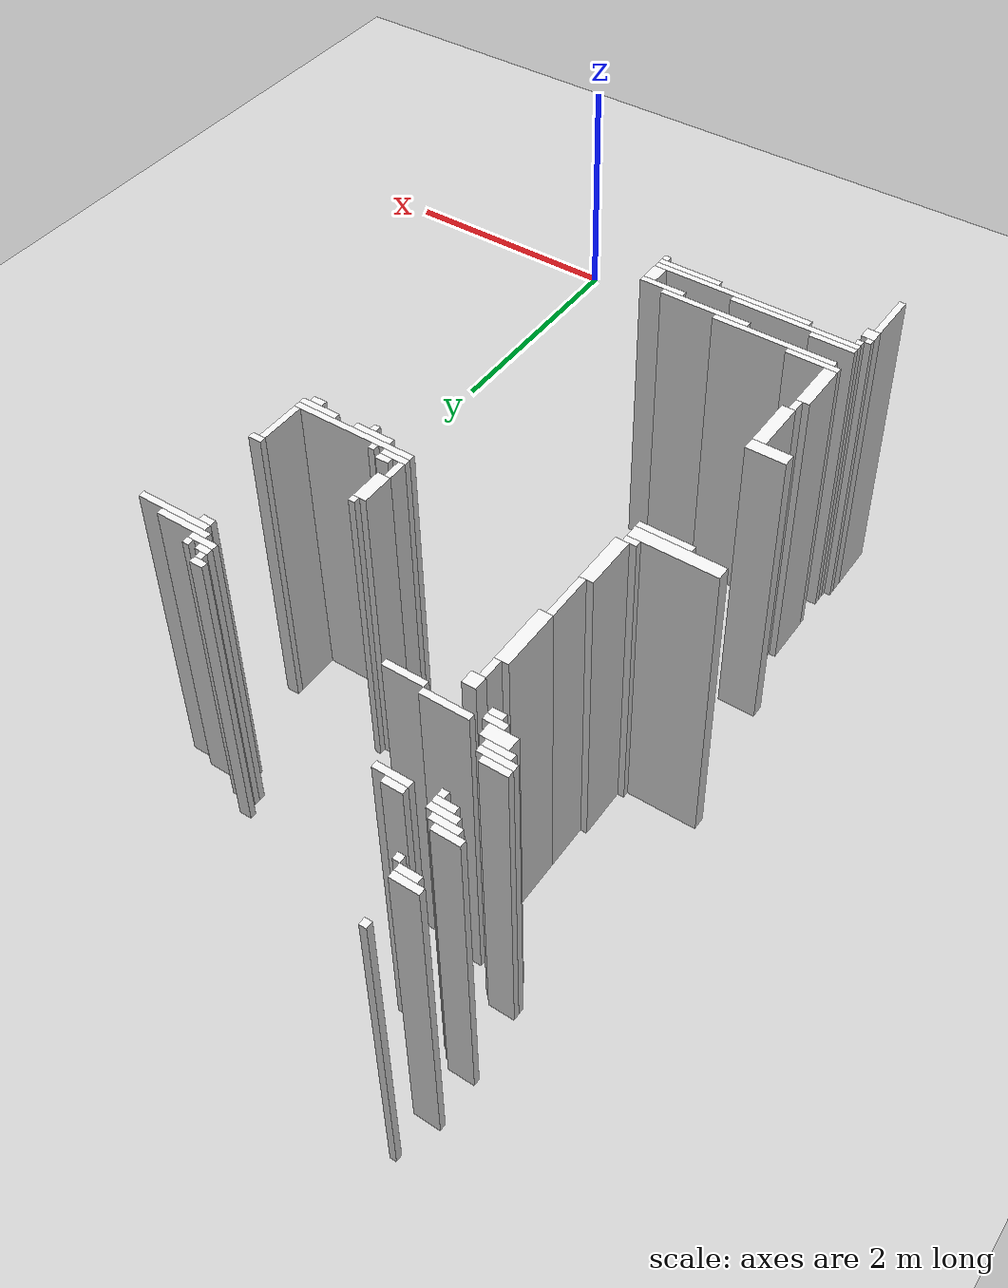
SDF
<sdf version="1.7">
 <world name="occupancy_map_world">
  <model name="ground_plane">
   <static>true</static>
   <link name="link">
    <collision name="collision">
     <geometry><plane><normal>0 0 1</normal><size>25.380000000000003 18.84</size></plane></geometry>
    </collision>
    <visual name="visual">
     <geometry><plane><normal>0 0 1</normal><size>25.380000000000003 18.84</size></plane></geometry>
     <material>
      <script><uri>file://media/materials/scripts/gazebo.material</uri><name>Gazebo/Grey</name></script>
     </material>
    </visual>
   </link>
  </model>
  <model name="wall_37">
   <static>true</static>
   <pose>-3.729000000000001 7.953 1.25 0 0 0.0</pose>
   <link name="link">
    <collision name="collision"><geometry><box><size>0.05 0.05 2.5</size></box></geometry></collision>
    <visual name="visual">
     <geometry><box><size>0.05 0.05 2.5</size></box></geometry>
     <material>
      <script><uri>file://media/materials/scripts/gazebo.material</uri><name>Gazebo/White</name></script>
     </material>
    </visual>
   </link>
  </model>
  <model name="wall_38">
   <static>true</static>
   <pose>-3.729000000000001 2.4029999999999996 1.25 0 0 0.0</pose>
   <link name="link">
    <collision name="collision"><geometry><box><size>0.05 0.05 2.5</size></box></geometry></collision>
    <visual name="visual">
     <geometry><box><size>0.05 0.05 2.5</size></box></geometry>
     <material>
      <script><uri>file://media/materials/scripts/gazebo.material</uri><name>Gazebo/White</name></script>
     </material>
    </visual>
   </link>
  </model>
  <model name="wall_39">
   <static>true</static>
   <pose>-3.729000000000001 2.0780000000000003 1.25 0 0 0.0</pose>
   <link name="link">
    <collision name="collision"><geometry><box><size>0.05 0.4 2.5</size></box></geometry></collision>
    <visual name="visual">
     <geometry><box><size>0.05 0.4 2.5</size></box></geometry>
     <material>
      <script><uri>file://media/materials/scripts/gazebo.material</uri><name>Gazebo/White</name></script>
     </material>
    </visual>
   </link>
  </model>
  <model name="wall_50">
   <static>true</static>
   <pose>-3.7540000000000013 7.653 1.25 0 0 0.0</pose>
   <link name="link">
    <collision name="collision"><geometry><box><size>0.2 0.05 2.5</size></box></geometry></collision>
    <visual name="visual">
     <geometry><box><size>0.2 0.05 2.5</size></box></geometry>
     <material>
      <script><uri>file://media/materials/scripts/gazebo.material</uri><name>Gazebo/White</name></script>
     </material>
    </visual>
   </link>
  </model>
  <model name="wall_51">
   <static>true</static>
   <pose>-3.7540000000000013 7.303 1.25 0 0 0.0</pose>
   <link name="link">
    <collision name="collision"><geometry><box><size>0.2 0.05 2.5</size></box></geometry></collision>
    <visual name="visual">
     <geometry><box><size>0.2 0.05 2.5</size></box></geometry>
     <material>
      <script><uri>file://media/materials/scripts/gazebo.material</uri><name>Gazebo/White</name></script>
     </material>
    </visual>
   </link>
  </model>
  <model name="wall_56">
   <static>true</static>
   <pose>-3.729000000000001 7.603000000000001 1.25 0 0 0.0</pose>
   <link name="link">
    <collision name="collision">
     <geometry><box><size>0.15000000000000002 0.05 2.5</size></box></geometry>
    </collision>
    <visual name="visual">
     <geometry><box><size>0.15000000000000002 0.05 2.5</size></box></geometry>
     <material>
      <script><uri>file://media/materials/scripts/gazebo.material</uri><name>Gazebo/White</name></script>
     </material>
    </visual>
   </link>
  </model>
  <model name="wall_58">
   <static>true</static>
   <pose>-3.6290000000000013 7.553 1.25 0 0 0.0</pose>
   <link name="link">
    <collision name="collision"><geometry><box><size>0.05 0.05 2.5</size></box></geometry></collision>
    <visual name="visual">
     <geometry><box><size>0.05 0.05 2.5</size></box></geometry>
     <material>
      <script><uri>file://media/materials/scripts/gazebo.material</uri><name>Gazebo/White</name></script>
     </material>
    </visual>
   </link>
  </model>
  <model name="wall_59">
   <static>true</static>
   <pose>-3.6290000000000013 3.2779999999999996 1.25 0 0 0.0</pose>
   <link name="link">
    <collision name="collision"><geometry><box><size>0.05 0.1 2.5</size></box></geometry></collision>
    <visual name="visual">
     <geometry><box><size>0.05 0.1 2.5</size></box></geometry>
     <material>
      <script><uri>file://media/materials/scripts/gazebo.material</uri><name>Gazebo/White</name></script>
     </material>
    </visual>
   </link>
  </model>
  <model name="wall_61">
   <static>true</static>
   <pose>-3.7040000000000006 7.253000000000001 1.25 0 0 0.0</pose>
   <link name="link">
    <collision name="collision"><geometry><box><size>0.2 0.05 2.5</size></box></geometry></collision>
    <visual name="visual">
     <geometry><box><size>0.2 0.05 2.5</size></box></geometry>
     <material>
      <script><uri>file://media/materials/scripts/gazebo.material</uri><name>Gazebo/White</name></script>
     </material>
    </visual>
   </link>
  </model>
  <model name="wall_62">
   <static>true</static>
   <pose>-3.7040000000000006 6.803 1.25 0 0 0.0</pose>
   <link name="link">
    <collision name="collision"><geometry><box><size>0.2 0.05 2.5</size></box></geometry></collision>
    <visual name="visual">
     <geometry><box><size>0.2 0.05 2.5</size></box></geometry>
     <material>
      <script><uri>file://media/materials/scripts/gazebo.material</uri><name>Gazebo/White</name></script>
     </material>
    </visual>
   </link>
  </model>
  <model name="wall_63">
   <static>true</static>
   <pose>-3.654 7.203 1.25 0 0 0.0</pose>
   <link name="link">
    <collision name="collision"><geometry><box><size>0.2 0.05 2.5</size></box></geometry></collision>
    <visual name="visual">
     <geometry><box><size>0.2 0.05 2.5</size></box></geometry>
     <material>
      <script><uri>file://media/materials/scripts/gazebo.material</uri><name>Gazebo/White</name></script>
     </material>
    </visual>
   </link>
  </model>
  <model name="wall_64">
   <static>true</static>
   <pose>-3.654 6.703 1.25 0 0 0.0</pose>
   <link name="link">
    <collision name="collision"><geometry><box><size>0.2 0.05 2.5</size></box></geometry></collision>
    <visual name="visual">
     <geometry><box><size>0.2 0.05 2.5</size></box></geometry>
     <material>
      <script><uri>file://media/materials/scripts/gazebo.material</uri><name>Gazebo/White</name></script>
     </material>
    </visual>
   </link>
  </model>
  <model name="wall_65">
   <static>true</static>
   <pose>-3.3290000000000006 7.203 1.25 0 0 0.0</pose>
   <link name="link">
    <collision name="collision">
     <geometry><box><size>0.15000000000000002 0.05 2.5</size></box></geometry>
    </collision>
    <visual name="visual">
     <geometry><box><size>0.15000000000000002 0.05 2.5</size></box></geometry>
     <material>
      <script><uri>file://media/materials/scripts/gazebo.material</uri><name>Gazebo/White</name></script>
     </material>
    </visual>
   </link>
  </model>
  <model name="wall_66">
   <static>true</static>
   <pose>-3.6290000000000013 7.153 1.25 0 0 0.0</pose>
   <link name="link">
    <collision name="collision">
     <geometry><box><size>0.15000000000000002 0.05 2.5</size></box></geometry>
    </collision>
    <visual name="visual">
     <geometry><box><size>0.15000000000000002 0.05 2.5</size></box></geometry>
     <material>
      <script><uri>file://media/materials/scripts/gazebo.material</uri><name>Gazebo/White</name></script>
     </material>
    </visual>
   </link>
  </model>
  <model name="wall_67">
   <static>true</static>
   <pose>-3.279 7.153 1.25 0 0 0.0</pose>
   <link name="link">
    <collision name="collision"><geometry><box><size>0.25 0.05 2.5</size></box></geometry></collision>
    <visual name="visual">
     <geometry><box><size>0.25 0.05 2.5</size></box></geometry>
     <material>
      <script><uri>file://media/materials/scripts/gazebo.material</uri><name>Gazebo/White</name></script>
     </material>
    </visual>
   </link>
  </model>
  <model name="wall_69">
   <static>true</static>
   <pose>-3.5790000000000006 7.103000000000001 1.25 0 0 0.0</pose>
   <link name="link">
    <collision name="collision"><geometry><box><size>0.05 0.05 2.5</size></box></geometry></collision>
    <visual name="visual">
     <geometry><box><size>0.05 0.05 2.5</size></box></geometry>
     <material>
      <script><uri>file://media/materials/scripts/gazebo.material</uri><name>Gazebo/White</name></script>
     </material>
    </visual>
   </link>
  </model>
  <model name="wall_103">
   <static>true</static>
   <pose>-3.6790000000000003 6.753000000000001 1.25 0 0 0.0</pose>
   <link name="link">
    <collision name="collision"><geometry><box><size>0.25 0.05 2.5</size></box></geometry></collision>
    <visual name="visual">
     <geometry><box><size>0.25 0.05 2.5</size></box></geometry>
     <material>
      <script><uri>file://media/materials/scripts/gazebo.material</uri><name>Gazebo/White</name></script>
     </material>
    </visual>
   </link>
  </model>
  <model name="wall_107">
   <static>true</static>
   <pose>-3.604000000000001 6.628000000000001 1.25 0 0 0.0</pose>
   <link name="link">
    <collision name="collision"><geometry><box><size>0.2 0.1 2.5</size></box></geometry></collision>
    <visual name="visual">
     <geometry><box><size>0.2 0.1 2.5</size></box></geometry>
     <material>
      <script><uri>file://media/materials/scripts/gazebo.material</uri><name>Gazebo/White</name></script>
     </material>
    </visual>
   </link>
  </model>
  <model name="wall_108">
   <static>true</static>
   <pose>-3.229000000000001 6.603000000000001 1.25 0 0 0.0</pose>
   <link name="link">
    <collision name="collision">
     <geometry><box><size>0.35000000000000003 0.05 2.5</size></box></geometry>
    </collision>
    <visual name="visual">
     <geometry><box><size>0.35000000000000003 0.05 2.5</size></box></geometry>
     <material>
      <script><uri>file://media/materials/scripts/gazebo.material</uri><name>Gazebo/White</name></script>
     </material>
    </visual>
   </link>
  </model>
  <model name="wall_109">
   <static>true</static>
   <pose>-3.529 6.553 1.25 0 0 0.0</pose>
   <link name="link">
    <collision name="collision">
     <geometry><box><size>0.15000000000000002 0.05 2.5</size></box></geometry>
    </collision>
    <visual name="visual">
     <geometry><box><size>0.15000000000000002 0.05 2.5</size></box></geometry>
     <material>
      <script><uri>file://media/materials/scripts/gazebo.material</uri><name>Gazebo/White</name></script>
     </material>
    </visual>
   </link>
  </model>
  <model name="wall_110">
   <static>true</static>
   <pose>-2.904 6.553 1.25 0 0 0.0</pose>
   <link name="link">
    <collision name="collision">
     <geometry><box><size>0.30000000000000004 0.05 2.5</size></box></geometry>
    </collision>
    <visual name="visual">
     <geometry><box><size>0.30000000000000004 0.05 2.5</size></box></geometry>
     <material>
      <script><uri>file://media/materials/scripts/gazebo.material</uri><name>Gazebo/White</name></script>
     </material>
    </visual>
   </link>
  </model>
  <model name="wall_111">
   <static>true</static>
   <pose>-1.3539999999999992 6.553 1.25 0 0 0.0</pose>
   <link name="link">
    <collision name="collision"><geometry><box><size>0.1 0.05 2.5</size></box></geometry></collision>
    <visual name="visual">
     <geometry><box><size>0.1 0.05 2.5</size></box></geometry>
     <material>
      <script><uri>file://media/materials/scripts/gazebo.material</uri><name>Gazebo/White</name></script>
     </material>
    </visual>
   </link>
  </model>
  <model name="wall_115">
   <static>true</static>
   <pose>-3.5040000000000013 6.503000000000001 1.25 0 0 0.0</pose>
   <link name="link">
    <collision name="collision"><geometry><box><size>0.1 0.05 2.5</size></box></geometry></collision>
    <visual name="visual">
     <geometry><box><size>0.1 0.05 2.5</size></box></geometry>
     <material>
      <script><uri>file://media/materials/scripts/gazebo.material</uri><name>Gazebo/White</name></script>
     </material>
    </visual>
   </link>
  </model>
  <model name="wall_116">
   <static>true</static>
   <pose>-1.3290000000000006 6.503000000000001 1.25 0 0 0.0</pose>
   <link name="link">
    <collision name="collision"><geometry><box><size>0.05 0.05 2.5</size></box></geometry></collision>
    <visual name="visual">
     <geometry><box><size>0.05 0.05 2.5</size></box></geometry>
     <material>
      <script><uri>file://media/materials/scripts/gazebo.material</uri><name>Gazebo/White</name></script>
     </material>
    </visual>
   </link>
  </model>
  <model name="wall_117">
   <static>true</static>
   <pose>-1.304000000000002 6.453 1.25 0 0 0.0</pose>
   <link name="link">
    <collision name="collision"><geometry><box><size>0.1 0.05 2.5</size></box></geometry></collision>
    <visual name="visual">
     <geometry><box><size>0.1 0.05 2.5</size></box></geometry>
     <material>
      <script><uri>file://media/materials/scripts/gazebo.material</uri><name>Gazebo/White</name></script>
     </material>
    </visual>
   </link>
  </model>
  <model name="wall_118">
   <static>true</static>
   <pose>-1.179000000000002 6.453 1.25 0 0 0.0</pose>
   <link name="link">
    <collision name="collision"><geometry><box><size>0.05 0.05 2.5</size></box></geometry></collision>
    <visual name="visual">
     <geometry><box><size>0.05 0.05 2.5</size></box></geometry>
     <material>
      <script><uri>file://media/materials/scripts/gazebo.material</uri><name>Gazebo/White</name></script>
     </material>
    </visual>
   </link>
  </model>
  <model name="wall_119">
   <static>true</static>
   <pose>-3.2540000000000013 6.378000000000001 1.25 0 0 0.0</pose>
   <link name="link">
    <collision name="collision"><geometry><box><size>0.1 0.1 2.5</size></box></geometry></collision>
    <visual name="visual">
     <geometry><box><size>0.1 0.1 2.5</size></box></geometry>
     <material>
      <script><uri>file://media/materials/scripts/gazebo.material</uri><name>Gazebo/White</name></script>
     </material>
    </visual>
   </link>
  </model>
  <model name="wall_120">
   <static>true</static>
   <pose>-1.2540000000000013 6.403 1.25 0 0 0.0</pose>
   <link name="link">
    <collision name="collision"><geometry><box><size>0.2 0.05 2.5</size></box></geometry></collision>
    <visual name="visual">
     <geometry><box><size>0.2 0.05 2.5</size></box></geometry>
     <material>
      <script><uri>file://media/materials/scripts/gazebo.material</uri><name>Gazebo/White</name></script>
     </material>
    </visual>
   </link>
  </model>
  <model name="wall_121">
   <static>true</static>
   <pose>-1.054000000000002 6.353000000000001 1.25 0 0 0.0</pose>
   <link name="link">
    <collision name="collision"><geometry><box><size>0.4 0.05 2.5</size></box></geometry></collision>
    <visual name="visual">
     <geometry><box><size>0.4 0.05 2.5</size></box></geometry>
     <material>
      <script><uri>file://media/materials/scripts/gazebo.material</uri><name>Gazebo/White</name></script>
     </material>
    </visual>
   </link>
  </model>
  <model name="wall_124">
   <static>true</static>
   <pose>-3.279 6.253000000000001 1.25 0 0 0.0</pose>
   <link name="link">
    <collision name="collision">
     <geometry><box><size>0.05 0.15000000000000002 2.5</size></box></geometry>
    </collision>
    <visual name="visual">
     <geometry><box><size>0.05 0.15000000000000002 2.5</size></box></geometry>
     <material>
      <script><uri>file://media/materials/scripts/gazebo.material</uri><name>Gazebo/White</name></script>
     </material>
    </visual>
   </link>
  </model>
  <model name="wall_125">
   <static>true</static>
   <pose>-0.929000000000002 6.303 1.25 0 0 0.0</pose>
   <link name="link">
    <collision name="collision"><geometry><box><size>0.55 0.05 2.5</size></box></geometry></collision>
    <visual name="visual">
     <geometry><box><size>0.55 0.05 2.5</size></box></geometry>
     <material>
      <script><uri>file://media/materials/scripts/gazebo.material</uri><name>Gazebo/White</name></script>
     </material>
    </visual>
   </link>
  </model>
  <model name="wall_126">
   <static>true</static>
   <pose>-1.154 6.253000000000001 1.25 0 0 0.0</pose>
   <link name="link">
    <collision name="collision"><geometry><box><size>0.1 0.05 2.5</size></box></geometry></collision>
    <visual name="visual">
     <geometry><box><size>0.1 0.05 2.5</size></box></geometry>
     <material>
      <script><uri>file://media/materials/scripts/gazebo.material</uri><name>Gazebo/White</name></script>
     </material>
    </visual>
   </link>
  </model>
  <model name="wall_130">
   <static>true</static>
   <pose>-3.3040000000000003 5.953 1.25 0 0 0.0</pose>
   <link name="link">
    <collision name="collision"><geometry><box><size>0.1 0.45 2.5</size></box></geometry></collision>
    <visual name="visual">
     <geometry><box><size>0.1 0.45 2.5</size></box></geometry>
     <material>
      <script><uri>file://media/materials/scripts/gazebo.material</uri><name>Gazebo/White</name></script>
     </material>
    </visual>
   </link>
  </model>
  <model name="wall_146">
   <static>true</static>
   <pose>-3.3290000000000006 5.553 1.25 0 0 0.0</pose>
   <link name="link">
    <collision name="collision">
     <geometry><box><size>0.05 0.35000000000000003 2.5</size></box></geometry>
    </collision>
    <visual name="visual">
     <geometry><box><size>0.05 0.35000000000000003 2.5</size></box></geometry>
     <material>
      <script><uri>file://media/materials/scripts/gazebo.material</uri><name>Gazebo/White</name></script>
     </material>
    </visual>
   </link>
  </model>
  <model name="wall_152">
   <static>true</static>
   <pose>-1.779 5.603000000000001 1.25 0 0 0.0</pose>
   <link name="link">
    <collision name="collision"><geometry><box><size>0.05 0.05 2.5</size></box></geometry></collision>
    <visual name="visual">
     <geometry><box><size>0.05 0.05 2.5</size></box></geometry>
     <material>
      <script><uri>file://media/materials/scripts/gazebo.material</uri><name>Gazebo/White</name></script>
     </material>
    </visual>
   </link>
  </model>
  <model name="wall_154">
   <static>true</static>
   <pose>-1.804000000000002 5.453 1.25 0 0 0.0</pose>
   <link name="link">
    <collision name="collision"><geometry><box><size>0.1 0.25 2.5</size></box></geometry></collision>
    <visual name="visual">
     <geometry><box><size>0.1 0.25 2.5</size></box></geometry>
     <material>
      <script><uri>file://media/materials/scripts/gazebo.material</uri><name>Gazebo/White</name></script>
     </material>
    </visual>
   </link>
  </model>
  <model name="wall_159">
   <static>true</static>
   <pose>-0.9039999999999999 5.503000000000001 1.25 0 0 0.0</pose>
   <link name="link">
    <collision name="collision"><geometry><box><size>0.1 0.05 2.5</size></box></geometry></collision>
    <visual name="visual">
     <geometry><box><size>0.1 0.05 2.5</size></box></geometry>
     <material>
      <script><uri>file://media/materials/scripts/gazebo.material</uri><name>Gazebo/White</name></script>
     </material>
    </visual>
   </link>
  </model>
  <model name="wall_160">
   <static>true</static>
   <pose>-0.929000000000002 5.303 1.25 0 0 0.0</pose>
   <link name="link">
    <collision name="collision">
     <geometry><box><size>0.05 0.35000000000000003 2.5</size></box></geometry>
    </collision>
    <visual name="visual">
     <geometry><box><size>0.05 0.35000000000000003 2.5</size></box></geometry>
     <material>
      <script><uri>file://media/materials/scripts/gazebo.material</uri><name>Gazebo/White</name></script>
     </material>
    </visual>
   </link>
  </model>
  <model name="wall_164">
   <static>true</static>
   <pose>-3.354000000000001 5.178 1.25 0 0 0.0</pose>
   <link name="link">
    <collision name="collision"><geometry><box><size>0.1 0.4 2.5</size></box></geometry></collision>
    <visual name="visual">
     <geometry><box><size>0.1 0.4 2.5</size></box></geometry>
     <material>
      <script><uri>file://media/materials/scripts/gazebo.material</uri><name>Gazebo/White</name></script>
     </material>
    </visual>
   </link>
  </model>
  <model name="wall_165">
   <static>true</static>
   <pose>-1.8290000000000006 5.253000000000001 1.25 0 0 0.0</pose>
   <link name="link">
    <collision name="collision">
     <geometry><box><size>0.05 0.15000000000000002 2.5</size></box></geometry>
    </collision>
    <visual name="visual">
     <geometry><box><size>0.05 0.15000000000000002 2.5</size></box></geometry>
     <material>
      <script><uri>file://media/materials/scripts/gazebo.material</uri><name>Gazebo/White</name></script>
     </material>
    </visual>
   </link>
  </model>
  <model name="wall_168">
   <static>true</static>
   <pose>-1.7040000000000006 5.203 1.25 0 0 0.0</pose>
   <link name="link">
    <collision name="collision"><geometry><box><size>0.1 0.05 2.5</size></box></geometry></collision>
    <visual name="visual">
     <geometry><box><size>0.1 0.05 2.5</size></box></geometry>
     <material>
      <script><uri>file://media/materials/scripts/gazebo.material</uri><name>Gazebo/White</name></script>
     </material>
    </visual>
   </link>
  </model>
  <model name="wall_169">
   <static>true</static>
   <pose>-1.7540000000000013 5.153 1.25 0 0 0.0</pose>
   <link name="link">
    <collision name="collision"><geometry><box><size>0.2 0.05 2.5</size></box></geometry></collision>
    <visual name="visual">
     <geometry><box><size>0.2 0.05 2.5</size></box></geometry>
     <material>
      <script><uri>file://media/materials/scripts/gazebo.material</uri><name>Gazebo/White</name></script>
     </material>
    </visual>
   </link>
  </model>
  <model name="wall_170">
   <static>true</static>
   <pose>-1.5790000000000006 5.153 1.25 0 0 0.0</pose>
   <link name="link">
    <collision name="collision"><geometry><box><size>0.05 0.05 2.5</size></box></geometry></collision>
    <visual name="visual">
     <geometry><box><size>0.05 0.05 2.5</size></box></geometry>
     <material>
      <script><uri>file://media/materials/scripts/gazebo.material</uri><name>Gazebo/White</name></script>
     </material>
    </visual>
   </link>
  </model>
  <model name="wall_171">
   <static>true</static>
   <pose>-1.3790000000000013 5.103000000000001 1.25 0 0 0.0</pose>
   <link name="link">
    <collision name="collision">
     <geometry><box><size>0.9500000000000001 0.05 2.5</size></box></geometry>
    </collision>
    <visual name="visual">
     <geometry><box><size>0.9500000000000001 0.05 2.5</size></box></geometry>
     <material>
      <script><uri>file://media/materials/scripts/gazebo.material</uri><name>Gazebo/White</name></script>
     </material>
    </visual>
   </link>
  </model>
  <model name="wall_172">
   <static>true</static>
   <pose>-1.5040000000000013 5.053 1.25 0 0 0.0</pose>
   <link name="link">
    <collision name="collision">
     <geometry><box><size>0.30000000000000004 0.05 2.5</size></box></geometry>
    </collision>
    <visual name="visual">
     <geometry><box><size>0.30000000000000004 0.05 2.5</size></box></geometry>
     <material>
      <script><uri>file://media/materials/scripts/gazebo.material</uri><name>Gazebo/White</name></script>
     </material>
    </visual>
   </link>
  </model>
  <model name="wall_173">
   <static>true</static>
   <pose>-1.054000000000002 5.053 1.25 0 0 0.0</pose>
   <link name="link">
    <collision name="collision">
     <geometry><box><size>0.30000000000000004 0.05 2.5</size></box></geometry>
    </collision>
    <visual name="visual">
     <geometry><box><size>0.30000000000000004 0.05 2.5</size></box></geometry>
     <material>
      <script><uri>file://media/materials/scripts/gazebo.material</uri><name>Gazebo/White</name></script>
     </material>
    </visual>
   </link>
  </model>
  <model name="wall_177">
   <static>true</static>
   <pose>-1.4789999999999992 5.002999999999999 1.25 0 0 0.0</pose>
   <link name="link">
    <collision name="collision"><geometry><box><size>0.05 0.05 2.5</size></box></geometry></collision>
    <visual name="visual">
     <geometry><box><size>0.05 0.05 2.5</size></box></geometry>
     <material>
      <script><uri>file://media/materials/scripts/gazebo.material</uri><name>Gazebo/White</name></script>
     </material>
    </visual>
   </link>
  </model>
  <model name="wall_178">
   <static>true</static>
   <pose>-1.0040000000000013 5.002999999999999 1.25 0 0 0.0</pose>
   <link name="link">
    <collision name="collision"><geometry><box><size>0.1 0.05 2.5</size></box></geometry></collision>
    <visual name="visual">
     <geometry><box><size>0.1 0.05 2.5</size></box></geometry>
     <material>
      <script><uri>file://media/materials/scripts/gazebo.material</uri><name>Gazebo/White</name></script>
     </material>
    </visual>
   </link>
  </model>
  <model name="wall_181">
   <static>true</static>
   <pose>-3.404 4.953 1.25 0 0 0.0</pose>
   <link name="link">
    <collision name="collision"><geometry><box><size>0.1 0.05 2.5</size></box></geometry></collision>
    <visual name="visual">
     <geometry><box><size>0.1 0.05 2.5</size></box></geometry>
     <material>
      <script><uri>file://media/materials/scripts/gazebo.material</uri><name>Gazebo/White</name></script>
     </material>
    </visual>
   </link>
  </model>
  <model name="wall_184">
   <static>true</static>
   <pose>-3.6790000000000003 4.877999999999999 1.25 0 0 0.0</pose>
   <link name="link">
    <collision name="collision"><geometry><box><size>0.65 0.1 2.5</size></box></geometry></collision>
    <visual name="visual">
     <geometry><box><size>0.65 0.1 2.5</size></box></geometry>
     <material>
      <script><uri>file://media/materials/scripts/gazebo.material</uri><name>Gazebo/White</name></script>
     </material>
    </visual>
   </link>
  </model>
  <model name="wall_191">
   <static>true</static>
   <pose>-3.5540000000000003 4.803 1.25 0 0 0.0</pose>
   <link name="link">
    <collision name="collision"><geometry><box><size>0.4 0.05 2.5</size></box></geometry></collision>
    <visual name="visual">
     <geometry><box><size>0.4 0.05 2.5</size></box></geometry>
     <material>
      <script><uri>file://media/materials/scripts/gazebo.material</uri><name>Gazebo/White</name></script>
     </material>
    </visual>
   </link>
  </model>
  <model name="wall_233">
   <static>true</static>
   <pose>-3.7040000000000006 3.7779999999999996 1.25 0 0 0.0</pose>
   <link name="link">
    <collision name="collision">
     <geometry><box><size>0.30000000000000004 0.1 2.5</size></box></geometry>
    </collision>
    <visual name="visual">
     <geometry><box><size>0.30000000000000004 0.1 2.5</size></box></geometry>
     <material>
      <script><uri>file://media/materials/scripts/gazebo.material</uri><name>Gazebo/White</name></script>
     </material>
    </visual>
   </link>
  </model>
  <model name="wall_235">
   <static>true</static>
   <pose>-3.604000000000001 3.5279999999999996 1.25 0 0 0.0</pose>
   <link name="link">
    <collision name="collision"><geometry><box><size>0.1 0.4 2.5</size></box></geometry></collision>
    <visual name="visual">
     <geometry><box><size>0.1 0.4 2.5</size></box></geometry>
     <material>
      <script><uri>file://media/materials/scripts/gazebo.material</uri><name>Gazebo/White</name></script>
     </material>
    </visual>
   </link>
  </model>
  <model name="wall_244">
   <static>true</static>
   <pose>-3.654 3.0279999999999996 1.25 0 0 0.0</pose>
   <link name="link">
    <collision name="collision"><geometry><box><size>0.1 0.4 2.5</size></box></geometry></collision>
    <visual name="visual">
     <geometry><box><size>0.1 0.4 2.5</size></box></geometry>
     <material>
      <script><uri>file://media/materials/scripts/gazebo.material</uri><name>Gazebo/White</name></script>
     </material>
    </visual>
   </link>
  </model>
  <model name="wall_266">
   <static>true</static>
   <pose>-3.5040000000000013 2.803 1.25 0 0 0.0</pose>
   <link name="link">
    <collision name="collision"><geometry><box><size>0.4 0.05 2.5</size></box></geometry></collision>
    <visual name="visual">
     <geometry><box><size>0.4 0.05 2.5</size></box></geometry>
     <material>
      <script><uri>file://media/materials/scripts/gazebo.material</uri><name>Gazebo/White</name></script>
     </material>
    </visual>
   </link>
  </model>
  <model name="wall_273">
   <static>true</static>
   <pose>-3.1790000000000003 2.753 1.25 0 0 0.0</pose>
   <link name="link">
    <collision name="collision">
     <geometry><box><size>0.9500000000000001 0.05 2.5</size></box></geometry>
    </collision>
    <visual name="visual">
     <geometry><box><size>0.9500000000000001 0.05 2.5</size></box></geometry>
     <material>
      <script><uri>file://media/materials/scripts/gazebo.material</uri><name>Gazebo/White</name></script>
     </material>
    </visual>
   </link>
  </model>
  <model name="wall_279">
   <static>true</static>
   <pose>-2.604000000000001 2.7030000000000003 1.25 0 0 0.0</pose>
   <link name="link">
    <collision name="collision">
     <geometry><box><size>0.7000000000000001 0.05 2.5</size></box></geometry>
    </collision>
    <visual name="visual">
     <geometry><box><size>0.7000000000000001 0.05 2.5</size></box></geometry>
     <material>
      <script><uri>file://media/materials/scripts/gazebo.material</uri><name>Gazebo/White</name></script>
     </material>
    </visual>
   </link>
  </model>
  <model name="wall_282">
   <static>true</static>
   <pose>-2.228999999999999 2.6529999999999996 1.25 0 0 0.0</pose>
   <link name="link">
    <collision name="collision">
     <geometry><box><size>0.35000000000000003 0.05 2.5</size></box></geometry>
    </collision>
    <visual name="visual">
     <geometry><box><size>0.35000000000000003 0.05 2.5</size></box></geometry>
     <material>
      <script><uri>file://media/materials/scripts/gazebo.material</uri><name>Gazebo/White</name></script>
     </material>
    </visual>
   </link>
  </model>
  <model name="wall_289">
   <static>true</static>
   <pose>-2.103999999999999 2.553 1.25 0 0 0.0</pose>
   <link name="link">
    <collision name="collision">
     <geometry><box><size>0.1 0.15000000000000002 2.5</size></box></geometry>
    </collision>
    <visual name="visual">
     <geometry><box><size>0.1 0.15000000000000002 2.5</size></box></geometry>
     <material>
      <script><uri>file://media/materials/scripts/gazebo.material</uri><name>Gazebo/White</name></script>
     </material>
    </visual>
   </link>
  </model>
  <model name="wall_292">
   <static>true</static>
   <pose>-3.529 2.553 1.25 0 0 0.0</pose>
   <link name="link">
    <collision name="collision">
     <geometry><box><size>0.35000000000000003 0.05 2.5</size></box></geometry>
    </collision>
    <visual name="visual">
     <geometry><box><size>0.35000000000000003 0.05 2.5</size></box></geometry>
     <material>
      <script><uri>file://media/materials/scripts/gazebo.material</uri><name>Gazebo/White</name></script>
     </material>
    </visual>
   </link>
  </model>
  <model name="wall_293">
   <static>true</static>
   <pose>-3.2040000000000006 2.503 1.25 0 0 0.0</pose>
   <link name="link">
    <collision name="collision"><geometry><box><size>1.0 0.05 2.5</size></box></geometry></collision>
    <visual name="visual">
     <geometry><box><size>1.0 0.05 2.5</size></box></geometry>
     <material>
      <script><uri>file://media/materials/scripts/gazebo.material</uri><name>Gazebo/White</name></script>
     </material>
    </visual>
   </link>
  </model>
  <model name="wall_296">
   <static>true</static>
   <pose>-3.6790000000000003 2.4530000000000003 1.25 0 0 0.0</pose>
   <link name="link">
    <collision name="collision"><geometry><box><size>0.05 0.05 2.5</size></box></geometry></collision>
    <visual name="visual">
     <geometry><box><size>0.05 0.05 2.5</size></box></geometry>
     <material>
      <script><uri>file://media/materials/scripts/gazebo.material</uri><name>Gazebo/White</name></script>
     </material>
    </visual>
   </link>
  </model>
  <model name="wall_298">
   <static>true</static>
   <pose>-2.6790000000000003 2.4530000000000003 1.25 0 0 0.0</pose>
   <link name="link">
    <collision name="collision"><geometry><box><size>1.25 0.05 2.5</size></box></geometry></collision>
    <visual name="visual">
     <geometry><box><size>1.25 0.05 2.5</size></box></geometry>
     <material>
      <script><uri>file://media/materials/scripts/gazebo.material</uri><name>Gazebo/White</name></script>
     </material>
    </visual>
   </link>
  </model>
  <model name="wall_299">
   <static>true</static>
   <pose>-2.304000000000002 2.4029999999999996 1.25 0 0 0.0</pose>
   <link name="link">
    <collision name="collision"><geometry><box><size>0.5 0.05 2.5</size></box></geometry></collision>
    <visual name="visual">
     <geometry><box><size>0.5 0.05 2.5</size></box></geometry>
     <material>
      <script><uri>file://media/materials/scripts/gazebo.material</uri><name>Gazebo/White</name></script>
     </material>
    </visual>
   </link>
  </model>
  <model name="wall_300">
   <static>true</static>
   <pose>-3.7040000000000006 2.3280000000000003 1.25 0 0 0.0</pose>
   <link name="link">
    <collision name="collision"><geometry><box><size>0.1 0.1 2.5</size></box></geometry></collision>
    <visual name="visual">
     <geometry><box><size>0.1 0.1 2.5</size></box></geometry>
     <material>
      <script><uri>file://media/materials/scripts/gazebo.material</uri><name>Gazebo/White</name></script>
     </material>
    </visual>
   </link>
  </model>
  <model name="wall_301">
   <static>true</static>
   <pose>-2.0790000000000006 2.3529999999999998 1.25 0 0 0.0</pose>
   <link name="link">
    <collision name="collision"><geometry><box><size>0.05 0.05 2.5</size></box></geometry></collision>
    <visual name="visual">
     <geometry><box><size>0.05 0.05 2.5</size></box></geometry>
     <material>
      <script><uri>file://media/materials/scripts/gazebo.material</uri><name>Gazebo/White</name></script>
     </material>
    </visual>
   </link>
  </model>
  <model name="wall_458">
   <static>true</static>
   <pose>-3.6790000000000003 2.4530000000000003 1.25 0 0 0.0</pose>
   <link name="link">
    <collision name="collision"><geometry><box><size>0.05 0.05 2.5</size></box></geometry></collision>
    <visual name="visual">
     <geometry><box><size>0.05 0.05 2.5</size></box></geometry>
     <material>
      <script><uri>file://media/materials/scripts/gazebo.material</uri><name>Gazebo/White</name></script>
     </material>
    </visual>
   </link>
  </model>
  <model name="wall_467">
   <static>true</static>
   <pose>-3.729000000000001 7.953 1.25 0 0 0.0</pose>
   <link name="link">
    <collision name="collision"><geometry><box><size>0.05 0.05 2.5</size></box></geometry></collision>
    <visual name="visual">
     <geometry><box><size>0.05 0.05 2.5</size></box></geometry>
     <material>
      <script><uri>file://media/materials/scripts/gazebo.material</uri><name>Gazebo/White</name></script>
     </material>
    </visual>
   </link>
  </model>
  <model name="wall_468">
   <static>true</static>
   <pose>-3.729000000000001 2.4029999999999996 1.25 0 0 0.0</pose>
   <link name="link">
    <collision name="collision"><geometry><box><size>0.05 0.05 2.5</size></box></geometry></collision>
    <visual name="visual">
     <geometry><box><size>0.05 0.05 2.5</size></box></geometry>
     <material>
      <script><uri>file://media/materials/scripts/gazebo.material</uri><name>Gazebo/White</name></script>
     </material>
    </visual>
   </link>
  </model>
  <model name="wall_469">
   <static>true</static>
   <pose>-3.729000000000001 2.0780000000000003 1.25 0 0 0.0</pose>
   <link name="link">
    <collision name="collision"><geometry><box><size>0.05 0.4 2.5</size></box></geometry></collision>
    <visual name="visual">
     <geometry><box><size>0.05 0.4 2.5</size></box></geometry>
     <material>
      <script><uri>file://media/materials/scripts/gazebo.material</uri><name>Gazebo/White</name></script>
     </material>
    </visual>
   </link>
  </model>
  <model name="wall_471">
   <static>true</static>
   <pose>-3.6290000000000013 7.553 1.25 0 0 0.0</pose>
   <link name="link">
    <collision name="collision"><geometry><box><size>0.05 0.05 2.5</size></box></geometry></collision>
    <visual name="visual">
     <geometry><box><size>0.05 0.05 2.5</size></box></geometry>
     <material>
      <script><uri>file://media/materials/scripts/gazebo.material</uri><name>Gazebo/White</name></script>
     </material>
    </visual>
   </link>
  </model>
  <model name="wall_472">
   <static>true</static>
   <pose>-3.6290000000000013 3.2779999999999996 1.25 0 0 0.0</pose>
   <link name="link">
    <collision name="collision"><geometry><box><size>0.05 0.1 2.5</size></box></geometry></collision>
    <visual name="visual">
     <geometry><box><size>0.05 0.1 2.5</size></box></geometry>
     <material>
      <script><uri>file://media/materials/scripts/gazebo.material</uri><name>Gazebo/White</name></script>
     </material>
    </visual>
   </link>
  </model>
  <model name="wall_473">
   <static>true</static>
   <pose>-3.5790000000000006 7.103000000000001 1.25 0 0 0.0</pose>
   <link name="link">
    <collision name="collision"><geometry><box><size>0.05 0.05 2.5</size></box></geometry></collision>
    <visual name="visual">
     <geometry><box><size>0.05 0.05 2.5</size></box></geometry>
     <material>
      <script><uri>file://media/materials/scripts/gazebo.material</uri><name>Gazebo/White</name></script>
     </material>
    </visual>
   </link>
  </model>
  <model name="wall_474">
   <static>true</static>
   <pose>-3.3290000000000006 5.553 1.25 0 0 0.0</pose>
   <link name="link">
    <collision name="collision">
     <geometry><box><size>0.05 0.35000000000000003 2.5</size></box></geometry>
    </collision>
    <visual name="visual">
     <geometry><box><size>0.05 0.35000000000000003 2.5</size></box></geometry>
     <material>
      <script><uri>file://media/materials/scripts/gazebo.material</uri><name>Gazebo/White</name></script>
     </material>
    </visual>
   </link>
  </model>
  <model name="wall_475">
   <static>true</static>
   <pose>-3.279 6.253000000000001 1.25 0 0 0.0</pose>
   <link name="link">
    <collision name="collision">
     <geometry><box><size>0.05 0.15000000000000002 2.5</size></box></geometry>
    </collision>
    <visual name="visual">
     <geometry><box><size>0.05 0.15000000000000002 2.5</size></box></geometry>
     <material>
      <script><uri>file://media/materials/scripts/gazebo.material</uri><name>Gazebo/White</name></script>
     </material>
    </visual>
   </link>
  </model>
  <model name="wall_477">
   <static>true</static>
   <pose>-2.0790000000000006 2.3529999999999998 1.25 0 0 0.0</pose>
   <link name="link">
    <collision name="collision"><geometry><box><size>0.05 0.05 2.5</size></box></geometry></collision>
    <visual name="visual">
     <geometry><box><size>0.05 0.05 2.5</size></box></geometry>
     <material>
      <script><uri>file://media/materials/scripts/gazebo.material</uri><name>Gazebo/White</name></script>
     </material>
    </visual>
   </link>
  </model>
  <model name="wall_478">
   <static>true</static>
   <pose>-1.8290000000000006 5.253000000000001 1.25 0 0 0.0</pose>
   <link name="link">
    <collision name="collision">
     <geometry><box><size>0.05 0.15000000000000002 2.5</size></box></geometry>
    </collision>
    <visual name="visual">
     <geometry><box><size>0.05 0.15000000000000002 2.5</size></box></geometry>
     <material>
      <script><uri>file://media/materials/scripts/gazebo.material</uri><name>Gazebo/White</name></script>
     </material>
    </visual>
   </link>
  </model>
  <model name="wall_479">
   <static>true</static>
   <pose>-1.779 5.603000000000001 1.25 0 0 0.0</pose>
   <link name="link">
    <collision name="collision"><geometry><box><size>0.05 0.05 2.5</size></box></geometry></collision>
    <visual name="visual">
     <geometry><box><size>0.05 0.05 2.5</size></box></geometry>
     <material>
      <script><uri>file://media/materials/scripts/gazebo.material</uri><name>Gazebo/White</name></script>
     </material>
    </visual>
   </link>
  </model>
  <model name="wall_480">
   <static>true</static>
   <pose>-1.5790000000000006 5.153 1.25 0 0 0.0</pose>
   <link name="link">
    <collision name="collision"><geometry><box><size>0.05 0.05 2.5</size></box></geometry></collision>
    <visual name="visual">
     <geometry><box><size>0.05 0.05 2.5</size></box></geometry>
     <material>
      <script><uri>file://media/materials/scripts/gazebo.material</uri><name>Gazebo/White</name></script>
     </material>
    </visual>
   </link>
  </model>
  <model name="wall_481">
   <static>true</static>
   <pose>-1.4789999999999992 5.002999999999999 1.25 0 0 0.0</pose>
   <link name="link">
    <collision name="collision"><geometry><box><size>0.05 0.05 2.5</size></box></geometry></collision>
    <visual name="visual">
     <geometry><box><size>0.05 0.05 2.5</size></box></geometry>
     <material>
      <script><uri>file://media/materials/scripts/gazebo.material</uri><name>Gazebo/White</name></script>
     </material>
    </visual>
   </link>
  </model>
  <model name="wall_482">
   <static>true</static>
   <pose>-1.3290000000000006 6.503000000000001 1.25 0 0 0.0</pose>
   <link name="link">
    <collision name="collision"><geometry><box><size>0.05 0.05 2.5</size></box></geometry></collision>
    <visual name="visual">
     <geometry><box><size>0.05 0.05 2.5</size></box></geometry>
     <material>
      <script><uri>file://media/materials/scripts/gazebo.material</uri><name>Gazebo/White</name></script>
     </material>
    </visual>
   </link>
  </model>
  <model name="wall_483">
   <static>true</static>
   <pose>-1.179000000000002 6.453 1.25 0 0 0.0</pose>
   <link name="link">
    <collision name="collision"><geometry><box><size>0.05 0.05 2.5</size></box></geometry></collision>
    <visual name="visual">
     <geometry><box><size>0.05 0.05 2.5</size></box></geometry>
     <material>
      <script><uri>file://media/materials/scripts/gazebo.material</uri><name>Gazebo/White</name></script>
     </material>
    </visual>
   </link>
  </model>
  <model name="wall_485">
   <static>true</static>
   <pose>-0.929000000000002 5.303 1.25 0 0 0.0</pose>
   <link name="link">
    <collision name="collision">
     <geometry><box><size>0.05 0.35000000000000003 2.5</size></box></geometry>
    </collision>
    <visual name="visual">
     <geometry><box><size>0.05 0.35000000000000003 2.5</size></box></geometry>
     <material>
      <script><uri>file://media/materials/scripts/gazebo.material</uri><name>Gazebo/White</name></script>
     </material>
    </visual>
   </link>
  </model>
 </world>
</sdf>
